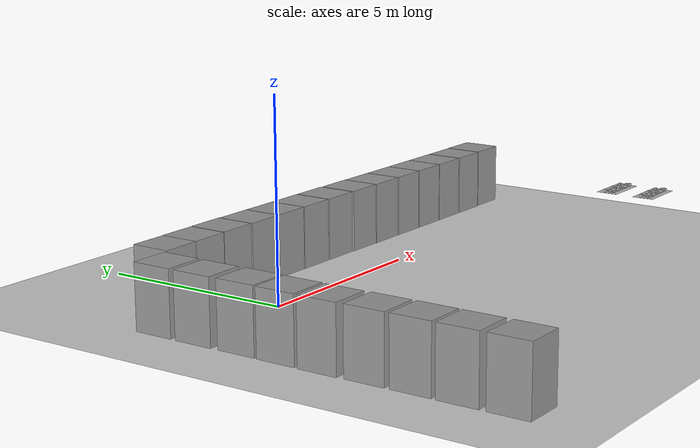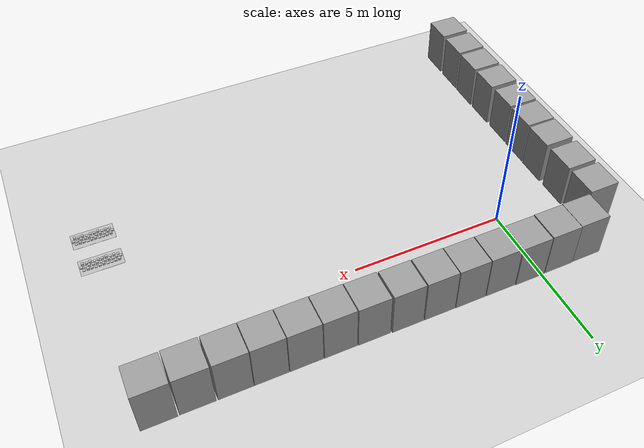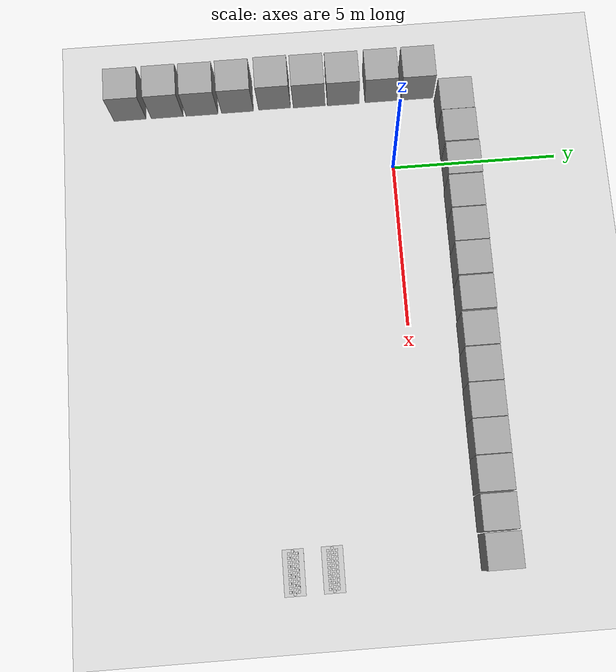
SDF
<sdf version="1.6">
 <world name="default">
  <model name="ground_plane">
   <static>1</static>
   <link name="link">
    <collision name="collision">
     <geometry><plane><normal>0 0 1</normal><size>100 100</size></plane></geometry>
     <surface><friction><ode><mu>100</mu><mu2>50</mu2></ode></friction></surface>
    </collision>
    <visual name="visual">
     <cast_shadows>0</cast_shadows>
     <geometry><plane><normal>0 0 1</normal><size>100 100</size></plane></geometry>
     <material>
      <script><uri>file://media/materials/scripts/gazebo.material</uri><name>Gazebo/Grey</name></script>
     </material>
    </visual>
   </link>
  </model>
  <model name="frc2016_roughterrain_clone_1">
   <static>1</static>
   <link name="link">
    <visual name="platform">
     <pose>0 0 0.08269 0 -0 0</pose>
     <geometry><box><size>1.27 0.5969 0.003175</size></box></geometry>
    </visual>
    <collision name="platform">
     <pose>0 0 0.08269 0 -0 0</pose>
     <geometry><box><size>1.27 0.5969 0.003175</size></box></geometry>
    </collision>
    <visual name="row1_block1_sm">
     <pose>0.51435 0.1143 0.09698 0 -0 0</pose>
     <geometry><box><size>0.0762 0.0762 0.0254</size></box></geometry>
    </visual>
    <collision name="row1_block1_sm">
     <pose>0.51435 0.1143 0.09698 0 -0 0</pose>
     <geometry><box><size>0.0762 0.0762 0.0254</size></box></geometry>
    </collision>
    <visual name="row1_block2_lg">
     <pose>0.40005 0.1143 0.12238 0 -0 0</pose>
     <geometry><box><size>0.0762 0.0762 0.0762</size></box></geometry>
    </visual>
    <collision name="row1_block2_lg">
     <pose>0.40005 0.1143 0.12238 0 -0 0</pose>
     <geometry><box><size>0.0762 0.0762 0.0762</size></box></geometry>
    </collision>
    <visual name="row1_block3_md">
     <pose>0.28575 0.1143 0.10968 0 -0 0</pose>
     <geometry><box><size>0.0762 0.0762 0.0508</size></box></geometry>
    </visual>
    <collision name="row1_block3_md">
     <pose>0.28575 0.1143 0.10968 0 -0 0</pose>
     <geometry><box><size>0.0762 0.0762 0.0508</size></box></geometry>
    </collision>
    <visual name="row1_block4_sm">
     <pose>0.17145 0.1143 0.09698 0 -0 0</pose>
     <geometry><box><size>0.0762 0.0762 0.0254</size></box></geometry>
    </visual>
    <collision name="row1_block4_sm">
     <pose>0.17145 0.1143 0.09698 0 -0 0</pose>
     <geometry><box><size>0.0762 0.0762 0.0254</size></box></geometry>
    </collision>
    <visual name="row1_block5_md">
     <pose>0.05715 0.1143 0.10968 0 -0 0</pose>
     <geometry><box><size>0.0762 0.0762 0.0508</size></box></geometry>
    </visual>
    <collision name="row1_block5_md">
     <pose>0.05715 0.1143 0.10968 0 -0 0</pose>
     <geometry><box><size>0.0762 0.0762 0.0508</size></box></geometry>
    </collision>
    <visual name="row1_block6_lg">
     <pose>-0.05715 0.1143 0.12238 0 -0 0</pose>
     <geometry><box><size>0.0762 0.0762 0.0762</size></box></geometry>
    </visual>
    <collision name="row1_block6_lg">
     <pose>-0.05715 0.1143 0.12238 0 -0 0</pose>
     <geometry><box><size>0.0762 0.0762 0.0762</size></box></geometry>
    </collision>
    <visual name="row1_block7_sm">
     <pose>-0.17145 0.1143 0.09698 0 -0 0</pose>
     <geometry><box><size>0.0762 0.0762 0.0254</size></box></geometry>
    </visual>
    <collision name="row1_block7_sm">
     <pose>-0.17145 0.1143 0.09698 0 -0 0</pose>
     <geometry><box><size>0.0762 0.0762 0.0254</size></box></geometry>
    </collision>
    <visual name="row1_block8_sm">
     <pose>-0.28575 0.1143 0.09698 0 -0 0</pose>
     <geometry><box><size>0.0762 0.0762 0.0254</size></box></geometry>
    </visual>
    <collision name="row1_block8_sm">
     <pose>-0.28575 0.1143 0.09698 0 -0 0</pose>
     <geometry><box><size>0.0762 0.0762 0.0254</size></box></geometry>
    </collision>
    <visual name="row1_block9_md">
     <pose>-0.40005 0.1143 0.10968 0 -0 0</pose>
     <geometry><box><size>0.0762 0.0762 0.0508</size></box></geometry>
    </visual>
    <collision name="row1_block9_md">
     <pose>-0.40005 0.1143 0.10968 0 -0 0</pose>
     <geometry><box><size>0.0762 0.0762 0.0508</size></box></geometry>
    </collision>
    <visual name="row1_block10_lg">
     <pose>-0.51435 0.1143 0.12238 0 -0 0</pose>
     <geometry><box><size>0.0762 0.0762 0.0762</size></box></geometry>
    </visual>
    <collision name="row1_block10_lg">
     <pose>-0.51435 0.1143 0.12238 0 -0 0</pose>
     <geometry><box><size>0.0762 0.0762 0.0762</size></box></geometry>
    </collision>
    <visual name="row2_block1_md">
     <pose>0.5715 0 0.10968 0 -0 0</pose>
     <geometry><box><size>0.0762 0.0762 0.0508</size></box></geometry>
    </visual>
    <collision name="row2_block1_md">
     <pose>0.5715 0 0.10968 0 -0 0</pose>
     <geometry><box><size>0.0762 0.0762 0.0508</size></box></geometry>
    </collision>
    <visual name="row2_block2_sm">
     <pose>0.4572 0 0.09698 0 -0 0</pose>
     <geometry><box><size>0.0762 0.0762 0.0254</size></box></geometry>
    </visual>
    <collision name="row2_block2_sm">
     <pose>0.4572 0 0.09698 0 -0 0</pose>
     <geometry><box><size>0.0762 0.0762 0.0254</size></box></geometry>
    </collision>
    <visual name="row2_block3_lg">
     <pose>0.3429 0 0.12238 0 -0 0</pose>
     <geometry><box><size>0.0762 0.0762 0.0762</size></box></geometry>
    </visual>
    <collision name="row2_block3_lg">
     <pose>0.3429 0 0.12238 0 -0 0</pose>
     <geometry><box><size>0.0762 0.0762 0.0762</size></box></geometry>
    </collision>
    <visual name="row2_block4_md">
     <pose>0.2286 0 0.10968 0 -0 0</pose>
     <geometry><box><size>0.0762 0.0762 0.0508</size></box></geometry>
    </visual>
    <collision name="row2_block4_md">
     <pose>0.2286 0 0.10968 0 -0 0</pose>
     <geometry><box><size>0.0762 0.0762 0.0508</size></box></geometry>
    </collision>
    <visual name="row2_block5_lg">
     <pose>0.1143 0 0.12238 0 -0 0</pose>
     <geometry><box><size>0.0762 0.0762 0.0762</size></box></geometry>
    </visual>
    <collision name="row2_block5_lg">
     <pose>0.1143 0 0.12238 0 -0 0</pose>
     <geometry><box><size>0.0762 0.0762 0.0762</size></box></geometry>
    </collision>
    <visual name="row2_block6_sm">
     <pose>0 0 0.09698 0 -0 0</pose>
     <geometry><box><size>0.0762 0.0762 0.0254</size></box></geometry>
    </visual>
    <collision name="row2_block6_sm">
     <pose>0 0 0.09698 0 -0 0</pose>
     <geometry><box><size>0.0762 0.0762 0.0254</size></box></geometry>
    </collision>
    <visual name="row2_block7_md">
     <pose>-0.1143 0 0.10968 0 -0 0</pose>
     <geometry><box><size>0.0762 0.0762 0.0508</size></box></geometry>
    </visual>
    <collision name="row2_block7_md">
     <pose>-0.1143 0 0.10968 0 -0 0</pose>
     <geometry><box><size>0.0762 0.0762 0.0508</size></box></geometry>
    </collision>
    <visual name="row2_block8_lg">
     <pose>-0.2286 0 0.12238 0 -0 0</pose>
     <geometry><box><size>0.0762 0.0762 0.0762</size></box></geometry>
    </visual>
    <collision name="row2_block8_lg">
     <pose>-0.2286 0 0.12238 0 -0 0</pose>
     <geometry><box><size>0.0762 0.0762 0.0762</size></box></geometry>
    </collision>
    <visual name="row2_block9_sm">
     <pose>-0.3429 0 0.09698 0 -0 0</pose>
     <geometry><box><size>0.0762 0.0762 0.0254</size></box></geometry>
    </visual>
    <collision name="row2_block9_sm">
     <pose>-0.3429 0 0.09698 0 -0 0</pose>
     <geometry><box><size>0.0762 0.0762 0.0254</size></box></geometry>
    </collision>
    <visual name="row2_block10_lg">
     <pose>-0.4572 0 0.12238 0 -0 0</pose>
     <geometry><box><size>0.0762 0.0762 0.0762</size></box></geometry>
    </visual>
    <collision name="row2_block10_lg">
     <pose>-0.4572 0 0.12238 0 -0 0</pose>
     <geometry><box><size>0.0762 0.0762 0.0762</size></box></geometry>
    </collision>
    <visual name="row2_block11_md">
     <pose>-0.5715 0 0.10968 0 -0 0</pose>
     <geometry><box><size>0.0762 0.0762 0.0508</size></box></geometry>
    </visual>
    <collision name="row2_block11_md">
     <pose>-0.5715 0 0.10968 0 -0 0</pose>
     <geometry><box><size>0.0762 0.0762 0.0508</size></box></geometry>
    </collision>
    <visual name="row3_block1_lg">
     <pose>0.51435 -0.1143 0.12238 0 -0 0</pose>
     <geometry><box><size>0.0762 0.0762 0.0762</size></box></geometry>
    </visual>
    <collision name="row3_block1_lg">
     <pose>0.51435 -0.1143 0.12238 0 -0 0</pose>
     <geometry><box><size>0.0762 0.0762 0.0762</size></box></geometry>
    </collision>
    <visual name="row3_block2_md">
     <pose>0.40005 -0.1143 0.10968 0 -0 0</pose>
     <geometry><box><size>0.0762 0.0762 0.0508</size></box></geometry>
    </visual>
    <collision name="row3_block2_md">
     <pose>0.40005 -0.1143 0.10968 0 -0 0</pose>
     <geometry><box><size>0.0762 0.0762 0.0508</size></box></geometry>
    </collision>
    <visual name="row3_block3_lg">
     <pose>0.28575 -0.1143 0.12238 0 -0 0</pose>
     <geometry><box><size>0.0762 0.0762 0.0762</size></box></geometry>
    </visual>
    <collision name="row3_block3_lg">
     <pose>0.28575 -0.1143 0.12238 0 -0 0</pose>
     <geometry><box><size>0.0762 0.0762 0.0762</size></box></geometry>
    </collision>
    <visual name="row3_block4_sm">
     <pose>0.17145 -0.1143 0.09698 0 -0 0</pose>
     <geometry><box><size>0.0762 0.0762 0.0254</size></box></geometry>
    </visual>
    <collision name="row3_block4_sm">
     <pose>0.17145 -0.1143 0.09698 0 -0 0</pose>
     <geometry><box><size>0.0762 0.0762 0.0254</size></box></geometry>
    </collision>
    <visual name="row3_block5_md">
     <pose>0.05715 -0.1143 0.10968 0 -0 0</pose>
     <geometry><box><size>0.0762 0.0762 0.0508</size></box></geometry>
    </visual>
    <collision name="row3_block5_md">
     <pose>0.05715 -0.1143 0.10968 0 -0 0</pose>
     <geometry><box><size>0.0762 0.0762 0.0508</size></box></geometry>
    </collision>
    <visual name="row3_block6_md">
     <pose>-0.05715 -0.1143 0.10968 0 -0 0</pose>
     <geometry><box><size>0.0762 0.0762 0.0508</size></box></geometry>
    </visual>
    <collision name="row3_block6_md">
     <pose>-0.05715 -0.1143 0.10968 0 -0 0</pose>
     <geometry><box><size>0.0762 0.0762 0.0508</size></box></geometry>
    </collision>
    <visual name="row3_block7_lg">
     <pose>-0.17145 -0.1143 0.12238 0 -0 0</pose>
     <geometry><box><size>0.0762 0.0762 0.0762</size></box></geometry>
    </visual>
    <collision name="row3_block7_lg">
     <pose>-0.17145 -0.1143 0.12238 0 -0 0</pose>
     <geometry><box><size>0.0762 0.0762 0.0762</size></box></geometry>
    </collision>
    <visual name="row3_block8_sm">
     <pose>-0.28575 -0.1143 0.09698 0 -0 0</pose>
     <geometry><box><size>0.0762 0.0762 0.0254</size></box></geometry>
    </visual>
    <collision name="row3_block8_sm">
     <pose>-0.28575 -0.1143 0.09698 0 -0 0</pose>
     <geometry><box><size>0.0762 0.0762 0.0254</size></box></geometry>
    </collision>
    <visual name="row3_block9_md">
     <pose>-0.40005 -0.1143 0.10968 0 -0 0</pose>
     <geometry><box><size>0.0762 0.0762 0.0508</size></box></geometry>
    </visual>
    <collision name="row3_block9_md">
     <pose>-0.40005 -0.1143 0.10968 0 -0 0</pose>
     <geometry><box><size>0.0762 0.0762 0.0508</size></box></geometry>
    </collision>
    <visual name="row3_block10_sm">
     <pose>-0.51435 -0.1143 0.09698 0 -0 0</pose>
     <geometry><box><size>0.0762 0.0762 0.0254</size></box></geometry>
    </visual>
    <collision name="row3_block10_sm">
     <pose>-0.51435 -0.1143 0.09698 0 -0 0</pose>
     <geometry><box><size>0.0762 0.0762 0.0254</size></box></geometry>
    </collision>
   </link>
   <pose>11.8703 -2.72596 0.826533 0 -0 0</pose>
  </model>
  <model name="frc2016_roughterrain_clone_2_clone_clone">
   <static>1</static>
   <link name="link">
    <visual name="platform">
     <pose>0 0 0.08269 0 -0 0</pose>
     <geometry><box><size>1.27 0.5969 0.003175</size></box></geometry>
    </visual>
    <collision name="platform">
     <pose>0 0 0.08269 0 -0 0</pose>
     <geometry><box><size>1.27 0.5969 0.003175</size></box></geometry>
    </collision>
    <visual name="row1_block1_sm">
     <pose>0.51435 0.1143 0.09698 0 -0 0</pose>
     <geometry><box><size>0.0762 0.0762 0.0254</size></box></geometry>
    </visual>
    <collision name="row1_block1_sm">
     <pose>0.51435 0.1143 0.09698 0 -0 0</pose>
     <geometry><box><size>0.0762 0.0762 0.0254</size></box></geometry>
    </collision>
    <visual name="row1_block2_lg">
     <pose>0.40005 0.1143 0.12238 0 -0 0</pose>
     <geometry><box><size>0.0762 0.0762 0.0762</size></box></geometry>
    </visual>
    <collision name="row1_block2_lg">
     <pose>0.40005 0.1143 0.12238 0 -0 0</pose>
     <geometry><box><size>0.0762 0.0762 0.0762</size></box></geometry>
    </collision>
    <visual name="row1_block3_md">
     <pose>0.28575 0.1143 0.10968 0 -0 0</pose>
     <geometry><box><size>0.0762 0.0762 0.0508</size></box></geometry>
    </visual>
    <collision name="row1_block3_md">
     <pose>0.28575 0.1143 0.10968 0 -0 0</pose>
     <geometry><box><size>0.0762 0.0762 0.0508</size></box></geometry>
    </collision>
    <visual name="row1_block4_sm">
     <pose>0.17145 0.1143 0.09698 0 -0 0</pose>
     <geometry><box><size>0.0762 0.0762 0.0254</size></box></geometry>
    </visual>
    <collision name="row1_block4_sm">
     <pose>0.17145 0.1143 0.09698 0 -0 0</pose>
     <geometry><box><size>0.0762 0.0762 0.0254</size></box></geometry>
    </collision>
    <visual name="row1_block5_md">
     <pose>0.05715 0.1143 0.10968 0 -0 0</pose>
     <geometry><box><size>0.0762 0.0762 0.0508</size></box></geometry>
    </visual>
    <collision name="row1_block5_md">
     <pose>0.05715 0.1143 0.10968 0 -0 0</pose>
     <geometry><box><size>0.0762 0.0762 0.0508</size></box></geometry>
    </collision>
    <visual name="row1_block6_lg">
     <pose>-0.05715 0.1143 0.12238 0 -0 0</pose>
     <geometry><box><size>0.0762 0.0762 0.0762</size></box></geometry>
    </visual>
    <collision name="row1_block6_lg">
     <pose>-0.05715 0.1143 0.12238 0 -0 0</pose>
     <geometry><box><size>0.0762 0.0762 0.0762</size></box></geometry>
    </collision>
    <visual name="row1_block7_sm">
     <pose>-0.17145 0.1143 0.09698 0 -0 0</pose>
     <geometry><box><size>0.0762 0.0762 0.0254</size></box></geometry>
    </visual>
    <collision name="row1_block7_sm">
     <pose>-0.17145 0.1143 0.09698 0 -0 0</pose>
     <geometry><box><size>0.0762 0.0762 0.0254</size></box></geometry>
    </collision>
    <visual name="row1_block8_sm">
     <pose>-0.28575 0.1143 0.09698 0 -0 0</pose>
     <geometry><box><size>0.0762 0.0762 0.0254</size></box></geometry>
    </visual>
    <collision name="row1_block8_sm">
     <pose>-0.28575 0.1143 0.09698 0 -0 0</pose>
     <geometry><box><size>0.0762 0.0762 0.0254</size></box></geometry>
    </collision>
    <visual name="row1_block9_md">
     <pose>-0.40005 0.1143 0.10968 0 -0 0</pose>
     <geometry><box><size>0.0762 0.0762 0.0508</size></box></geometry>
    </visual>
    <collision name="row1_block9_md">
     <pose>-0.40005 0.1143 0.10968 0 -0 0</pose>
     <geometry><box><size>0.0762 0.0762 0.0508</size></box></geometry>
    </collision>
    <visual name="row1_block10_lg">
     <pose>-0.51435 0.1143 0.12238 0 -0 0</pose>
     <geometry><box><size>0.0762 0.0762 0.0762</size></box></geometry>
    </visual>
    <collision name="row1_block10_lg">
     <pose>-0.51435 0.1143 0.12238 0 -0 0</pose>
     <geometry><box><size>0.0762 0.0762 0.0762</size></box></geometry>
    </collision>
    <visual name="row2_block1_md">
     <pose>0.5715 0 0.10968 0 -0 0</pose>
     <geometry><box><size>0.0762 0.0762 0.0508</size></box></geometry>
    </visual>
    <collision name="row2_block1_md">
     <pose>0.5715 0 0.10968 0 -0 0</pose>
     <geometry><box><size>0.0762 0.0762 0.0508</size></box></geometry>
    </collision>
    <visual name="row2_block2_sm">
     <pose>0.4572 0 0.09698 0 -0 0</pose>
     <geometry><box><size>0.0762 0.0762 0.0254</size></box></geometry>
    </visual>
    <collision name="row2_block2_sm">
     <pose>0.4572 0 0.09698 0 -0 0</pose>
     <geometry><box><size>0.0762 0.0762 0.0254</size></box></geometry>
    </collision>
    <visual name="row2_block3_lg">
     <pose>0.3429 0 0.12238 0 -0 0</pose>
     <geometry><box><size>0.0762 0.0762 0.0762</size></box></geometry>
    </visual>
    <collision name="row2_block3_lg">
     <pose>0.3429 0 0.12238 0 -0 0</pose>
     <geometry><box><size>0.0762 0.0762 0.0762</size></box></geometry>
    </collision>
    <visual name="row2_block4_md">
     <pose>0.2286 0 0.10968 0 -0 0</pose>
     <geometry><box><size>0.0762 0.0762 0.0508</size></box></geometry>
    </visual>
    <collision name="row2_block4_md">
     <pose>0.2286 0 0.10968 0 -0 0</pose>
     <geometry><box><size>0.0762 0.0762 0.0508</size></box></geometry>
    </collision>
    <visual name="row2_block5_lg">
     <pose>0.1143 0 0.12238 0 -0 0</pose>
     <geometry><box><size>0.0762 0.0762 0.0762</size></box></geometry>
    </visual>
    <collision name="row2_block5_lg">
     <pose>0.1143 0 0.12238 0 -0 0</pose>
     <geometry><box><size>0.0762 0.0762 0.0762</size></box></geometry>
    </collision>
    <visual name="row2_block6_sm">
     <pose>0 0 0.09698 0 -0 0</pose>
     <geometry><box><size>0.0762 0.0762 0.0254</size></box></geometry>
    </visual>
    <collision name="row2_block6_sm">
     <pose>0 0 0.09698 0 -0 0</pose>
     <geometry><box><size>0.0762 0.0762 0.0254</size></box></geometry>
    </collision>
    <visual name="row2_block7_md">
     <pose>-0.1143 0 0.10968 0 -0 0</pose>
     <geometry><box><size>0.0762 0.0762 0.0508</size></box></geometry>
    </visual>
    <collision name="row2_block7_md">
     <pose>-0.1143 0 0.10968 0 -0 0</pose>
     <geometry><box><size>0.0762 0.0762 0.0508</size></box></geometry>
    </collision>
    <visual name="row2_block8_lg">
     <pose>-0.2286 0 0.12238 0 -0 0</pose>
     <geometry><box><size>0.0762 0.0762 0.0762</size></box></geometry>
    </visual>
    <collision name="row2_block8_lg">
     <pose>-0.2286 0 0.12238 0 -0 0</pose>
     <geometry><box><size>0.0762 0.0762 0.0762</size></box></geometry>
    </collision>
    <visual name="row2_block9_sm">
     <pose>-0.3429 0 0.09698 0 -0 0</pose>
     <geometry><box><size>0.0762 0.0762 0.0254</size></box></geometry>
    </visual>
    <collision name="row2_block9_sm">
     <pose>-0.3429 0 0.09698 0 -0 0</pose>
     <geometry><box><size>0.0762 0.0762 0.0254</size></box></geometry>
    </collision>
    <visual name="row2_block10_lg">
     <pose>-0.4572 0 0.12238 0 -0 0</pose>
     <geometry><box><size>0.0762 0.0762 0.0762</size></box></geometry>
    </visual>
    <collision name="row2_block10_lg">
     <pose>-0.4572 0 0.12238 0 -0 0</pose>
     <geometry><box><size>0.0762 0.0762 0.0762</size></box></geometry>
    </collision>
    <visual name="row2_block11_md">
     <pose>-0.5715 0 0.10968 0 -0 0</pose>
     <geometry><box><size>0.0762 0.0762 0.0508</size></box></geometry>
    </visual>
    <collision name="row2_block11_md">
     <pose>-0.5715 0 0.10968 0 -0 0</pose>
     <geometry><box><size>0.0762 0.0762 0.0508</size></box></geometry>
    </collision>
    <visual name="row3_block1_lg">
     <pose>0.51435 -0.1143 0.12238 0 -0 0</pose>
     <geometry><box><size>0.0762 0.0762 0.0762</size></box></geometry>
    </visual>
    <collision name="row3_block1_lg">
     <pose>0.51435 -0.1143 0.12238 0 -0 0</pose>
     <geometry><box><size>0.0762 0.0762 0.0762</size></box></geometry>
    </collision>
    <visual name="row3_block2_md">
     <pose>0.40005 -0.1143 0.10968 0 -0 0</pose>
     <geometry><box><size>0.0762 0.0762 0.0508</size></box></geometry>
    </visual>
    <collision name="row3_block2_md">
     <pose>0.40005 -0.1143 0.10968 0 -0 0</pose>
     <geometry><box><size>0.0762 0.0762 0.0508</size></box></geometry>
    </collision>
    <visual name="row3_block3_lg">
     <pose>0.28575 -0.1143 0.12238 0 -0 0</pose>
     <geometry><box><size>0.0762 0.0762 0.0762</size></box></geometry>
    </visual>
    <collision name="row3_block3_lg">
     <pose>0.28575 -0.1143 0.12238 0 -0 0</pose>
     <geometry><box><size>0.0762 0.0762 0.0762</size></box></geometry>
    </collision>
    <visual name="row3_block4_sm">
     <pose>0.17145 -0.1143 0.09698 0 -0 0</pose>
     <geometry><box><size>0.0762 0.0762 0.0254</size></box></geometry>
    </visual>
    <collision name="row3_block4_sm">
     <pose>0.17145 -0.1143 0.09698 0 -0 0</pose>
     <geometry><box><size>0.0762 0.0762 0.0254</size></box></geometry>
    </collision>
    <visual name="row3_block5_md">
     <pose>0.05715 -0.1143 0.10968 0 -0 0</pose>
     <geometry><box><size>0.0762 0.0762 0.0508</size></box></geometry>
    </visual>
    <collision name="row3_block5_md">
     <pose>0.05715 -0.1143 0.10968 0 -0 0</pose>
     <geometry><box><size>0.0762 0.0762 0.0508</size></box></geometry>
    </collision>
    <visual name="row3_block6_md">
     <pose>-0.05715 -0.1143 0.10968 0 -0 0</pose>
     <geometry><box><size>0.0762 0.0762 0.0508</size></box></geometry>
    </visual>
    <collision name="row3_block6_md">
     <pose>-0.05715 -0.1143 0.10968 0 -0 0</pose>
     <geometry><box><size>0.0762 0.0762 0.0508</size></box></geometry>
    </collision>
    <visual name="row3_block7_lg">
     <pose>-0.17145 -0.1143 0.12238 0 -0 0</pose>
     <geometry><box><size>0.0762 0.0762 0.0762</size></box></geometry>
    </visual>
    <collision name="row3_block7_lg">
     <pose>-0.17145 -0.1143 0.12238 0 -0 0</pose>
     <geometry><box><size>0.0762 0.0762 0.0762</size></box></geometry>
    </collision>
    <visual name="row3_block8_sm">
     <pose>-0.28575 -0.1143 0.09698 0 -0 0</pose>
     <geometry><box><size>0.0762 0.0762 0.0254</size></box></geometry>
    </visual>
    <collision name="row3_block8_sm">
     <pose>-0.28575 -0.1143 0.09698 0 -0 0</pose>
     <geometry><box><size>0.0762 0.0762 0.0254</size></box></geometry>
    </collision>
    <visual name="row3_block9_md">
     <pose>-0.40005 -0.1143 0.10968 0 -0 0</pose>
     <geometry><box><size>0.0762 0.0762 0.0508</size></box></geometry>
    </visual>
    <collision name="row3_block9_md">
     <pose>-0.40005 -0.1143 0.10968 0 -0 0</pose>
     <geometry><box><size>0.0762 0.0762 0.0508</size></box></geometry>
    </collision>
    <visual name="row3_block10_sm">
     <pose>-0.51435 -0.1143 0.09698 0 -0 0</pose>
     <geometry><box><size>0.0762 0.0762 0.0254</size></box></geometry>
    </visual>
    <collision name="row3_block10_sm">
     <pose>-0.51435 -0.1143 0.09698 0 -0 0</pose>
     <geometry><box><size>0.0762 0.0762 0.0254</size></box></geometry>
    </collision>
   </link>
   <pose>11.8722 -3.81128 0.826533 0 -0 0</pose>
  </model>
  <model name="unit_box_clone">
   <pose>-0.622807 1.98438 0.79937 0 -0 0.000159</pose>
   <link name="link">
    <inertial>
     <mass>1</mass>
     <inertia>
      <ixx>0.166667</ixx>
      <ixy>0</ixy>
      <ixz>0</ixz>
      <iyy>0.166667</iyy>
      <iyz>0</iyz>
      <izz>0.166667</izz>
     </inertia>
    </inertial>
    <collision name="collision"><geometry><box><size>1 1 1.59874</size></box></geometry></collision>
    <visual name="visual">
     <geometry><box><size>1 1 1.59874</size></box></geometry>
     <material>
      <script><name>Gazebo/Grey</name><uri>file://media/materials/scripts/gazebo.material</uri></script>
     </material>
    </visual>
   </link>
  </model>
  <model name="unit_box_clone_0">
   <pose>0.4093 1.99706 0.79937 0 -0 0.000159</pose>
   <link name="link">
    <inertial>
     <mass>1</mass>
     <inertia>
      <ixx>0.166667</ixx>
      <ixy>0</ixy>
      <ixz>0</ixz>
      <iyy>0.166667</iyy>
      <iyz>0</iyz>
      <izz>0.166667</izz>
     </inertia>
    </inertial>
    <collision name="collision"><geometry><box><size>1 1 1.59874</size></box></geometry></collision>
    <visual name="visual">
     <geometry><box><size>1 1 1.59874</size></box></geometry>
     <material>
      <script><name>Gazebo/Grey</name><uri>file://media/materials/scripts/gazebo.material</uri></script>
     </material>
    </visual>
   </link>
  </model>
  <model name="unit_box_clone_1">
   <pose>1.43098 1.97849 0.79937 0 -0 2.1e-05</pose>
   <link name="link">
    <inertial>
     <mass>1</mass>
     <inertia>
      <ixx>0.166667</ixx>
      <ixy>0</ixy>
      <ixz>0</ixz>
      <iyy>0.166667</iyy>
      <iyz>0</iyz>
      <izz>0.166667</izz>
     </inertia>
    </inertial>
    <collision name="collision"><geometry><box><size>1 1 1.59874</size></box></geometry></collision>
    <visual name="visual">
     <geometry><box><size>1 1 1.59874</size></box></geometry>
     <material>
      <script><name>Gazebo/Grey</name><uri>file://media/materials/scripts/gazebo.material</uri></script>
     </material>
    </visual>
   </link>
  </model>
  <model name="unit_box_clone_2">
   <pose>2.45348 1.97434 0.799368 1e-06 -5e-06 -0.000148</pose>
   <link name="link">
    <inertial>
     <mass>1</mass>
     <inertia>
      <ixx>0.166667</ixx>
      <ixy>0</ixy>
      <ixz>0</ixz>
      <iyy>0.166667</iyy>
      <iyz>0</iyz>
      <izz>0.166667</izz>
     </inertia>
    </inertial>
    <collision name="collision"><geometry><box><size>1 1 1.59874</size></box></geometry></collision>
    <visual name="visual">
     <geometry><box><size>1 1 1.59874</size></box></geometry>
     <material>
      <script><name>Gazebo/Grey</name><uri>file://media/materials/scripts/gazebo.material</uri></script>
     </material>
    </visual>
   </link>
  </model>
  <model name="unit_box_clone_3">
   <pose>3.47154 1.96728 0.79937 0 -0 -0.000131</pose>
   <link name="link">
    <inertial>
     <mass>1</mass>
     <inertia>
      <ixx>0.166667</ixx>
      <ixy>0</ixy>
      <ixz>0</ixz>
      <iyy>0.166667</iyy>
      <iyz>0</iyz>
      <izz>0.166667</izz>
     </inertia>
    </inertial>
    <collision name="collision"><geometry><box><size>1 1 1.59874</size></box></geometry></collision>
    <visual name="visual">
     <geometry><box><size>1 1 1.59874</size></box></geometry>
     <material>
      <script><name>Gazebo/Grey</name><uri>file://media/materials/scripts/gazebo.material</uri></script>
     </material>
    </visual>
   </link>
  </model>
  <model name="unit_box_clone_4">
   <pose>4.50654 1.96218 0.79937 0 -0 -0.000131</pose>
   <link name="link">
    <inertial>
     <mass>1</mass>
     <inertia>
      <ixx>0.166667</ixx>
      <ixy>0</ixy>
      <ixz>0</ixz>
      <iyy>0.166667</iyy>
      <iyz>0</iyz>
      <izz>0.166667</izz>
     </inertia>
    </inertial>
    <collision name="collision"><geometry><box><size>1 1 1.59874</size></box></geometry></collision>
    <visual name="visual">
     <geometry><box><size>1 1 1.59874</size></box></geometry>
     <material>
      <script><name>Gazebo/Grey</name><uri>file://media/materials/scripts/gazebo.material</uri></script>
     </material>
    </visual>
   </link>
  </model>
  <model name="unit_box_clone_5">
   <pose>5.55763 1.94228 0.79937 0 -0 1e-06</pose>
   <link name="link">
    <inertial>
     <mass>1</mass>
     <inertia>
      <ixx>0.166667</ixx>
      <ixy>0</ixy>
      <ixz>0</ixz>
      <iyy>0.166667</iyy>
      <iyz>0</iyz>
      <izz>0.166667</izz>
     </inertia>
    </inertial>
    <collision name="collision"><geometry><box><size>1 1 1.59874</size></box></geometry></collision>
    <visual name="visual">
     <geometry><box><size>1 1 1.59874</size></box></geometry>
     <material>
      <script><name>Gazebo/Grey</name><uri>file://media/materials/scripts/gazebo.material</uri></script>
     </material>
    </visual>
   </link>
  </model>
  <model name="unit_box_clone_6">
   <pose>6.57972 1.93037 0.79937 0 -0 1e-06</pose>
   <link name="link">
    <inertial>
     <mass>1</mass>
     <inertia>
      <ixx>0.166667</ixx>
      <ixy>0</ixy>
      <ixz>0</ixz>
      <iyy>0.166667</iyy>
      <iyz>0</iyz>
      <izz>0.166667</izz>
     </inertia>
    </inertial>
    <collision name="collision"><geometry><box><size>1 1 1.59874</size></box></geometry></collision>
    <visual name="visual">
     <geometry><box><size>1 1 1.59874</size></box></geometry>
     <material>
      <script><name>Gazebo/Grey</name><uri>file://media/materials/scripts/gazebo.material</uri></script>
     </material>
    </visual>
   </link>
  </model>
  <model name="unit_box_clone_7">
   <pose>7.59947 1.92302 0.79937 0 -0 1e-06</pose>
   <link name="link">
    <inertial>
     <mass>1</mass>
     <inertia>
      <ixx>0.166667</ixx>
      <ixy>0</ixy>
      <ixz>0</ixz>
      <iyy>0.166667</iyy>
      <iyz>0</iyz>
      <izz>0.166667</izz>
     </inertia>
    </inertial>
    <collision name="collision"><geometry><box><size>1 1 1.59874</size></box></geometry></collision>
    <visual name="visual">
     <geometry><box><size>1 1 1.59874</size></box></geometry>
     <material>
      <script><name>Gazebo/Grey</name><uri>file://media/materials/scripts/gazebo.material</uri></script>
     </material>
    </visual>
   </link>
  </model>
  <model name="unit_box_clone_8">
   <pose>8.61627 1.91895 0.799371 0 1e-06 -0.001807</pose>
   <link name="link">
    <inertial>
     <mass>1</mass>
     <inertia>
      <ixx>0.166667</ixx>
      <ixy>0</ixy>
      <ixz>0</ixz>
      <iyy>0.166667</iyy>
      <iyz>0</iyz>
      <izz>0.166667</izz>
     </inertia>
    </inertial>
    <collision name="collision"><geometry><box><size>1 1 1.59874</size></box></geometry></collision>
    <visual name="visual">
     <geometry><box><size>1 1 1.59874</size></box></geometry>
     <material>
      <script><name>Gazebo/Grey</name><uri>file://media/materials/scripts/gazebo.material</uri></script>
     </material>
    </visual>
   </link>
  </model>
  <model name="unit_box_clone_9">
   <pose>9.63681 1.91703 0.799368 4e-06 -0 -0.001844</pose>
   <link name="link">
    <inertial>
     <mass>1</mass>
     <inertia>
      <ixx>0.166667</ixx>
      <ixy>0</ixy>
      <ixz>0</ixz>
      <iyy>0.166667</iyy>
      <iyz>0</iyz>
      <izz>0.166667</izz>
     </inertia>
    </inertial>
    <collision name="collision"><geometry><box><size>1 1 1.59874</size></box></geometry></collision>
    <visual name="visual">
     <geometry><box><size>1 1 1.59874</size></box></geometry>
     <material>
      <script><name>Gazebo/Grey</name><uri>file://media/materials/scripts/gazebo.material</uri></script>
     </material>
    </visual>
   </link>
  </model>
  <model name="unit_box_clone_10">
   <pose>10.6853 1.9151 0.799366 6e-06 2e-06 -0.001843</pose>
   <link name="link">
    <inertial>
     <mass>1</mass>
     <inertia>
      <ixx>0.166667</ixx>
      <ixy>0</ixy>
      <ixz>0</ixz>
      <iyy>0.166667</iyy>
      <iyz>0</iyz>
      <izz>0.166667</izz>
     </inertia>
    </inertial>
    <collision name="collision"><geometry><box><size>1 1 1.59874</size></box></geometry></collision>
    <visual name="visual">
     <geometry><box><size>1 1 1.59874</size></box></geometry>
     <material>
      <script><name>Gazebo/Grey</name><uri>file://media/materials/scripts/gazebo.material</uri></script>
     </material>
    </visual>
   </link>
  </model>
  <model name="unit_box_clone_10_clone">
   <pose>11.7317 1.92866 0.799366 3e-06 -4e-06 -6e-06</pose>
   <link name="link">
    <inertial>
     <mass>1</mass>
     <inertia>
      <ixx>0.166667</ixx>
      <ixy>0</ixy>
      <ixz>0</ixz>
      <iyy>0.166667</iyy>
      <iyz>0</iyz>
      <izz>0.166667</izz>
     </inertia>
    </inertial>
    <collision name="collision"><geometry><box><size>1 1 1.59874</size></box></geometry></collision>
    <visual name="visual">
     <geometry><box><size>1 1 1.59874</size></box></geometry>
     <material>
      <script><name>Gazebo/Grey</name><uri>file://media/materials/scripts/gazebo.material</uri></script>
     </material>
    </visual>
   </link>
  </model>
  <model name="unit_box_clone_clone">
   <pose>-1.62705 1.96992 0.799366 -4e-06 3e-06 2e-06</pose>
   <link name="link">
    <inertial>
     <mass>1</mass>
     <inertia>
      <ixx>0.166667</ixx>
      <ixy>0</ixy>
      <ixz>0</ixz>
      <iyy>0.166667</iyy>
      <iyz>0</iyz>
      <izz>0.166667</izz>
     </inertia>
    </inertial>
    <collision name="collision"><geometry><box><size>1 1 1.59874</size></box></geometry></collision>
    <visual name="visual">
     <geometry><box><size>1 1 1.59874</size></box></geometry>
     <material>
      <script><name>Gazebo/Grey</name><uri>file://media/materials/scripts/gazebo.material</uri></script>
     </material>
    </visual>
   </link>
  </model>
  <model name="unit_box_clone_clone_0">
   <pose>-2.73323 0.941004 0.799366 -4e-06 3e-06 2e-06</pose>
   <link name="link">
    <inertial>
     <mass>1</mass>
     <inertia>
      <ixx>0.166667</ixx>
      <ixy>0</ixy>
      <ixz>0</ixz>
      <iyy>0.166667</iyy>
      <iyz>0</iyz>
      <izz>0.166667</izz>
     </inertia>
    </inertial>
    <collision name="collision"><geometry><box><size>1 1 1.59874</size></box></geometry></collision>
    <visual name="visual">
     <geometry><box><size>1 1 1.59874</size></box></geometry>
     <material>
      <script><name>Gazebo/Grey</name><uri>file://media/materials/scripts/gazebo.material</uri></script>
     </material>
    </visual>
   </link>
  </model>
  <model name="unit_box_clone_clone_1">
   <pose>-2.73594 -0.192607 0.799366 -4e-06 3e-06 2e-06</pose>
   <link name="link">
    <inertial>
     <mass>1</mass>
     <inertia>
      <ixx>0.166667</ixx>
      <ixy>0</ixy>
      <ixz>0</ixz>
      <iyy>0.166667</iyy>
      <iyz>0</iyz>
      <izz>0.166667</izz>
     </inertia>
    </inertial>
    <collision name="collision"><geometry><box><size>1 1 1.59874</size></box></geometry></collision>
    <visual name="visual">
     <geometry><box><size>1 1 1.59874</size></box></geometry>
     <material>
      <script><name>Gazebo/Grey</name><uri>file://media/materials/scripts/gazebo.material</uri></script>
     </material>
    </visual>
   </link>
  </model>
  <model name="unit_box_clone_clone_2">
   <pose>-2.72165 -1.37631 0.799366 -4e-06 3e-06 2e-06</pose>
   <link name="link">
    <inertial>
     <mass>1</mass>
     <inertia>
      <ixx>0.166667</ixx>
      <ixy>0</ixy>
      <ixz>0</ixz>
      <iyy>0.166667</iyy>
      <iyz>0</iyz>
      <izz>0.166667</izz>
     </inertia>
    </inertial>
    <collision name="collision"><geometry><box><size>1 1 1.59874</size></box></geometry></collision>
    <visual name="visual">
     <geometry><box><size>1 1 1.59874</size></box></geometry>
     <material>
      <script><name>Gazebo/Grey</name><uri>file://media/materials/scripts/gazebo.material</uri></script>
     </material>
    </visual>
   </link>
  </model>
  <model name="unit_box_clone_clone_2_clone">
   <pose>-2.73236 -2.44322 0.799366 -4e-06 3e-06 2e-06</pose>
   <link name="link">
    <inertial>
     <mass>1</mass>
     <inertia>
      <ixx>0.166667</ixx>
      <ixy>0</ixy>
      <ixz>0</ixz>
      <iyy>0.166667</iyy>
      <iyz>0</iyz>
      <izz>0.166667</izz>
     </inertia>
    </inertial>
    <collision name="collision"><geometry><box><size>1 1 1.59874</size></box></geometry></collision>
    <visual name="visual">
     <geometry><box><size>1 1 1.59874</size></box></geometry>
     <material>
      <script><name>Gazebo/Grey</name><uri>file://media/materials/scripts/gazebo.material</uri></script>
     </material>
    </visual>
   </link>
  </model>
  <model name="unit_box_clone_clone_2_clone_0">
   <pose>-2.74552 -3.52869 0.799366 -4e-06 3e-06 2e-06</pose>
   <link name="link">
    <inertial>
     <mass>1</mass>
     <inertia>
      <ixx>0.166667</ixx>
      <ixy>0</ixy>
      <ixz>0</ixz>
      <iyy>0.166667</iyy>
      <iyz>0</iyz>
      <izz>0.166667</izz>
     </inertia>
    </inertial>
    <collision name="collision"><geometry><box><size>1 1 1.59874</size></box></geometry></collision>
    <visual name="visual">
     <geometry><box><size>1 1 1.59874</size></box></geometry>
     <material>
      <script><name>Gazebo/Grey</name><uri>file://media/materials/scripts/gazebo.material</uri></script>
     </material>
    </visual>
   </link>
  </model>
  <model name="unit_box_clone_clone_2_clone_1">
   <pose>-2.7226 -4.69089 0.799366 -4e-06 3e-06 2e-06</pose>
   <link name="link">
    <inertial>
     <mass>1</mass>
     <inertia>
      <ixx>0.166667</ixx>
      <ixy>0</ixy>
      <ixz>0</ixz>
      <iyy>0.166667</iyy>
      <iyz>0</iyz>
      <izz>0.166667</izz>
     </inertia>
    </inertial>
    <collision name="collision"><geometry><box><size>1 1 1.59874</size></box></geometry></collision>
    <visual name="visual">
     <geometry><box><size>1 1 1.59874</size></box></geometry>
     <material>
      <script><name>Gazebo/Grey</name><uri>file://media/materials/scripts/gazebo.material</uri></script>
     </material>
    </visual>
   </link>
  </model>
  <model name="unit_box_clone_clone_2_clone_2">
   <pose>-2.71241 -5.79917 0.799366 2e-06 6e-06 -0.002433</pose>
   <link name="link">
    <inertial>
     <mass>1</mass>
     <inertia>
      <ixx>0.166667</ixx>
      <ixy>0</ixy>
      <ixz>0</ixz>
      <iyy>0.166667</iyy>
      <iyz>0</iyz>
      <izz>0.166667</izz>
     </inertia>
    </inertial>
    <collision name="collision"><geometry><box><size>1 1 1.59874</size></box></geometry></collision>
    <visual name="visual">
     <geometry><box><size>1 1 1.59874</size></box></geometry>
     <material>
      <script><name>Gazebo/Grey</name><uri>file://media/materials/scripts/gazebo.material</uri></script>
     </material>
    </visual>
   </link>
  </model>
  <model name="unit_box_clone_clone_2_clone_3">
   <pose>-2.71698 -6.89025 0.799368 -5e-06 1e-06 0.002952</pose>
   <link name="link">
    <inertial>
     <mass>1</mass>
     <inertia>
      <ixx>0.166667</ixx>
      <ixy>0</ixy>
      <ixz>0</ixz>
      <iyy>0.166667</iyy>
      <iyz>0</iyz>
      <izz>0.166667</izz>
     </inertia>
    </inertial>
    <collision name="collision"><geometry><box><size>1 1 1.59874</size></box></geometry></collision>
    <visual name="visual">
     <geometry><box><size>1 1 1.59874</size></box></geometry>
     <material>
      <script><name>Gazebo/Grey</name><uri>file://media/materials/scripts/gazebo.material</uri></script>
     </material>
    </visual>
   </link>
  </model>
  <model name="unit_box_clone_clone_2_clone_4">
   <pose>-2.71681 -8.04777 0.799371 -2e-06 -0 -0.000218</pose>
   <link name="link">
    <inertial>
     <mass>1</mass>
     <inertia>
      <ixx>0.166667</ixx>
      <ixy>0</ixy>
      <ixz>0</ixz>
      <iyy>0.166667</iyy>
      <iyz>0</iyz>
      <izz>0.166667</izz>
     </inertia>
    </inertial>
    <collision name="collision"><geometry><box><size>1 1 1.59874</size></box></geometry></collision>
    <visual name="visual">
     <geometry><box><size>1 1 1.59874</size></box></geometry>
     <material>
      <script><name>Gazebo/Grey</name><uri>file://media/materials/scripts/gazebo.material</uri></script>
     </material>
    </visual>
   </link>
  </model>
 </world>
</sdf>
